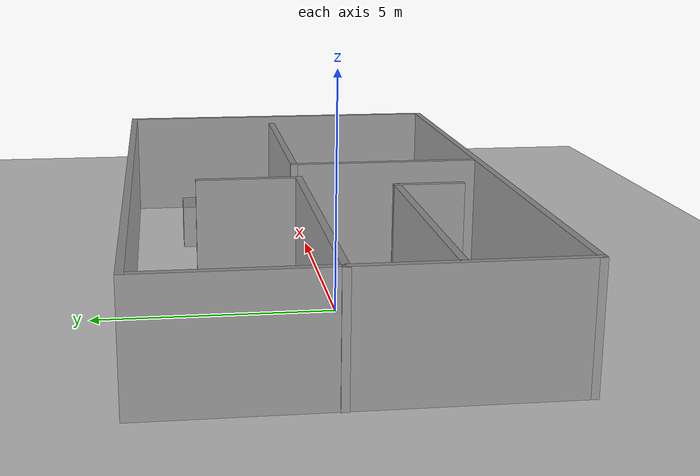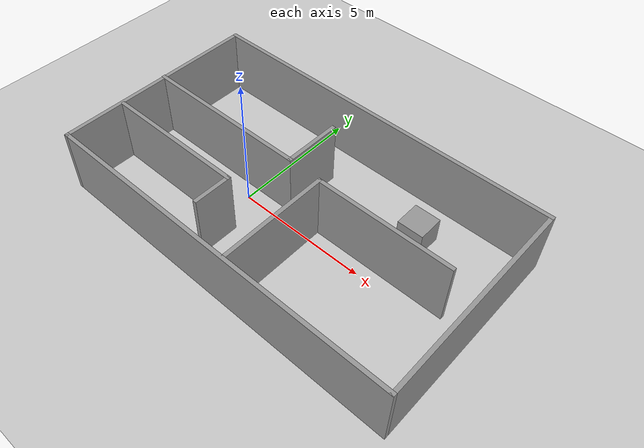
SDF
<sdf version="1.7">
 <world name="default">
  <light name="sun" type="directional">
   <pose>0 0 10 0 -0 0</pose>
   <diffuse>0.8 0.8 0.8 1</diffuse>
   <specular>0.2 0.2 0.2 1</specular>
   <attenuation>
    <range>1000</range>
    <constant>0.9</constant>
    <linear>0.01</linear>
    <quadratic>0.001</quadratic>
   </attenuation>
   <direction>-0.5 0.1 -0.9</direction>
   <spot><inner_angle>0</inner_angle><outer_angle>0</outer_angle><falloff>0</falloff></spot>
  </light>
  <model name="ground_plane">
   <static>1</static>
   <link name="link">
    <collision name="collision">
     <geometry><plane><normal>0 0 1</normal><size>100 100</size></plane></geometry>
     <surface><friction><ode><mu>100</mu><mu2>50</mu2></ode></friction></surface>
    </collision>
    <visual name="visual">
     <cast_shadows>0</cast_shadows>
     <geometry><plane><normal>0 0 1</normal><size>100 100</size></plane></geometry>
     <material>
      <script><uri>file://media/materials/scripts/gazebo.material</uri><name>Gazebo/Grey</name></script>
     </material>
    </visual>
   </link>
  </model>
  <gravity>0 0 -9.8</gravity>
  <magnetic_field>6e-06 2.3e-05 -4.2e-05</magnetic_field>
  <atmosphere type="adiabatic"/>
  <physics type="ode">
   <max_step_size>0.001</max_step_size>
   <real_time_factor>1</real_time_factor>
   <real_time_update_rate>1000</real_time_update_rate>
  </physics>
  <scene><ambient>0.4 0.4 0.4 1</ambient><background>0.7 0.7 0.7 1</background><shadows>1</shadows></scene>
  <audio><device>default</device></audio>
  <spherical_coordinates>
   <surface_model>EARTH_WGS84</surface_model>
   <latitude_deg>0</latitude_deg>
   <longitude_deg>0</longitude_deg>
   <elevation>0</elevation>
   <heading_deg>0</heading_deg>
  </spherical_coordinates>
  <model name="room">
   <pose>2.09375 0.250518 0 0 -0 0</pose>
   <link name="Wall_0">
    <collision name="Wall_0_Collision">
     <geometry><box><size>14 0.15 2.5</size></box></geometry>
     <pose>0 0 1.25 0 -0 0</pose>
    </collision>
    <visual name="Wall_0_Visual">
     <pose>0 0 1.25 0 -0 0</pose>
     <geometry><box><size>14 0.15 2.5</size></box></geometry>
     <material>
      <script><uri>file://media/materials/scripts/gazebo.material</uri><name>Gazebo/Grey</name></script>
      <ambient>1 1 1 1</ambient>
     </material>
     <meta><layer>0</layer></meta>
    </visual>
    <pose>0.012681 3.925 0 0 -0 0</pose>
   </link>
   <link name="Wall_10">
    <collision name="Wall_10_Collision">
     <geometry><box><size>5.5 0.15 2.5</size></box></geometry>
     <pose>0 0 1.25 0 -0 0</pose>
    </collision>
    <visual name="Wall_10_Visual">
     <pose>0 0 1.25 0 -0 0</pose>
     <geometry><box><size>5.5 0.15 2.5</size></box></geometry>
     <material>
      <script><uri>file://media/materials/scripts/gazebo.material</uri><name>Gazebo/Grey</name></script>
      <ambient>1 1 1 1</ambient>
     </material>
     <meta><layer>0</layer></meta>
    </visual>
    <pose>-4.15622 -1.61216 0 0 -0 0</pose>
   </link>
   <link name="Wall_11">
    <collision name="Wall_11_Collision">
     <geometry><box><size>1.5 0.15 2.5</size></box></geometry>
     <pose>0 0 1.25 0 -0 0</pose>
    </collision>
    <visual name="Wall_11_Visual">
     <pose>0 0 1.25 0 -0 0</pose>
     <geometry><box><size>1.5 0.15 2.5</size></box></geometry>
     <material>
      <script><uri>file://media/materials/scripts/gazebo.material</uri><name>Gazebo/Grey</name></script>
      <ambient>1 1 1 1</ambient>
     </material>
     <meta><layer>0</layer></meta>
    </visual>
    <pose>-1.48122 -2.28716 0 0 -0 -1.5708</pose>
   </link>
   <link name="Wall_14">
    <collision name="Wall_14_Collision">
     <geometry><box><size>4.25 0.15 2.5</size></box></geometry>
     <pose>0 0 1.25 0 -0 0</pose>
    </collision>
    <visual name="Wall_14_Visual">
     <pose>0 0 1.25 0 -0 0</pose>
     <geometry><box><size>4.25 0.15 2.5</size></box></geometry>
     <material>
      <script><uri>file://media/materials/scripts/gazebo.material</uri><name>Gazebo/Grey</name></script>
      <ambient>1 1 1 1</ambient>
     </material>
     <meta><layer>0</layer></meta>
    </visual>
    <pose>0.726237 -1.76106 0 0 -0 -1.5708</pose>
   </link>
   <link name="Wall_16">
    <collision name="Wall_16_Collision">
     <geometry><box><size>5.25 0.15 2.5</size></box></geometry>
     <pose>0 0 1.25 0 -0 0</pose>
    </collision>
    <visual name="Wall_16_Visual">
     <pose>0 0 1.25 0 -0 0</pose>
     <geometry><box><size>5.25 0.15 2.5</size></box></geometry>
     <material>
      <script><uri>file://media/materials/scripts/gazebo.material</uri><name>Gazebo/Grey</name></script>
      <ambient>1 1 1 1</ambient>
     </material>
     <meta><layer>0</layer></meta>
    </visual>
    <pose>3.27624 0.288938 0 0 -0 0</pose>
   </link>
   <link name="Wall_2">
    <collision name="Wall_2_Collision">
     <geometry><box><size>8 0.15 2.5</size></box></geometry>
     <pose>0 0 1.25 0 -0 0</pose>
    </collision>
    <visual name="Wall_2_Visual">
     <pose>0 0 1.25 0 -0 0</pose>
     <geometry><box><size>8 0.15 2.5</size></box></geometry>
     <material>
      <script><uri>file://media/materials/scripts/gazebo.material</uri><name>Gazebo/Grey</name></script>
      <ambient>1 1 1 1</ambient>
     </material>
     <meta><layer>0</layer></meta>
    </visual>
    <pose>6.93768 0 0 0 -0 -1.5708</pose>
   </link>
   <link name="Wall_21">
    <collision name="Wall_21_Collision">
     <geometry><box><size>6.5 0.15 2.5</size></box></geometry>
     <pose>0 0 1.25 0 -0 0</pose>
    </collision>
    <visual name="Wall_21_Visual">
     <pose>0 0 1.25 0 -0 0</pose>
     <geometry><box><size>6.5 0.15 2.5</size></box></geometry>
     <material>
      <script><uri>file://media/materials/scripts/gazebo.material</uri><name>Gazebo/Grey</name></script>
      <ambient>1 1 1 1</ambient>
     </material>
     <meta><layer>0</layer></meta>
    </visual>
    <pose>-3.76268 0.33465 0 0 -0 3.14159</pose>
   </link>
   <link name="Wall_3">
    <collision name="Wall_3_Collision">
     <geometry><box><size>14 0.15 2.5</size></box></geometry>
     <pose>0 0 1.25 0 -0 0</pose>
    </collision>
    <visual name="Wall_3_Visual">
     <pose>0 0 1.25 0 -0 0</pose>
     <geometry><box><size>14 0.15 2.5</size></box></geometry>
     <material>
      <script><uri>file://media/materials/scripts/gazebo.material</uri><name>Gazebo/Grey</name></script>
      <ambient>1 1 1 1</ambient>
     </material>
     <meta><layer>0</layer></meta>
    </visual>
    <pose>0.012681 -3.925 0 0 -0 3.14159</pose>
   </link>
   <link name="Wall_4">
    <collision name="Wall_4_Collision">
     <geometry><box><size>8 0.15 2.5</size></box></geometry>
     <pose>0 0 1.25 0 -0 0</pose>
    </collision>
    <visual name="Wall_4_Visual">
     <pose>0 0 1.25 0 -0 0</pose>
     <geometry><box><size>8 0.15 2.5</size></box></geometry>
     <material>
      <script><uri>file://media/materials/scripts/gazebo.material</uri><name>Gazebo/Grey</name></script>
      <ambient>1 1 1 1</ambient>
     </material>
     <meta><layer>0</layer></meta>
    </visual>
    <pose>-6.91232 0 0 0 -0 1.5708</pose>
   </link>
   <link name="Wall_8">
    <collision name="Wall_8_Collision">
     <geometry><box><size>2.26512 0.15 2.5</size></box></geometry>
     <pose>0 0 1.25 0 -0 0</pose>
    </collision>
    <visual name="Wall_8_Visual">
     <pose>0 0 1.25 0 -0 0</pose>
     <geometry><box><size>2.26512 0.15 2.5</size></box></geometry>
     <material>
      <script><uri>file://media/materials/scripts/gazebo.material</uri><name>Gazebo/Grey</name></script>
      <ambient>1 1 1 1</ambient>
     </material>
     <meta><layer>0</layer></meta>
    </visual>
    <pose>-0.587682 1.39221 0 0 -0 1.5708</pose>
   </link>
   <static>1</static>
  </model>
  <model name="unit_box">
   <pose>5.54207 2.48045 0.499995 1e-05 -0 0</pose>
   <link name="link">
    <inertial>
     <mass>1</mass>
     <inertia>
      <ixx>0.166667</ixx>
      <ixy>0</ixy>
      <ixz>0</ixz>
      <iyy>0.166667</iyy>
      <iyz>0</iyz>
      <izz>0.166667</izz>
     </inertia>
    </inertial>
    <collision name="collision"><geometry><box><size>1 1 1</size></box></geometry></collision>
    <visual name="visual">
     <geometry><box><size>1 1 1</size></box></geometry>
     <material>
      <script><name>Gazebo/Grey</name><uri>file://media/materials/scripts/gazebo.material</uri></script>
     </material>
    </visual>
   </link>
  </model>
 </world>
</sdf>
